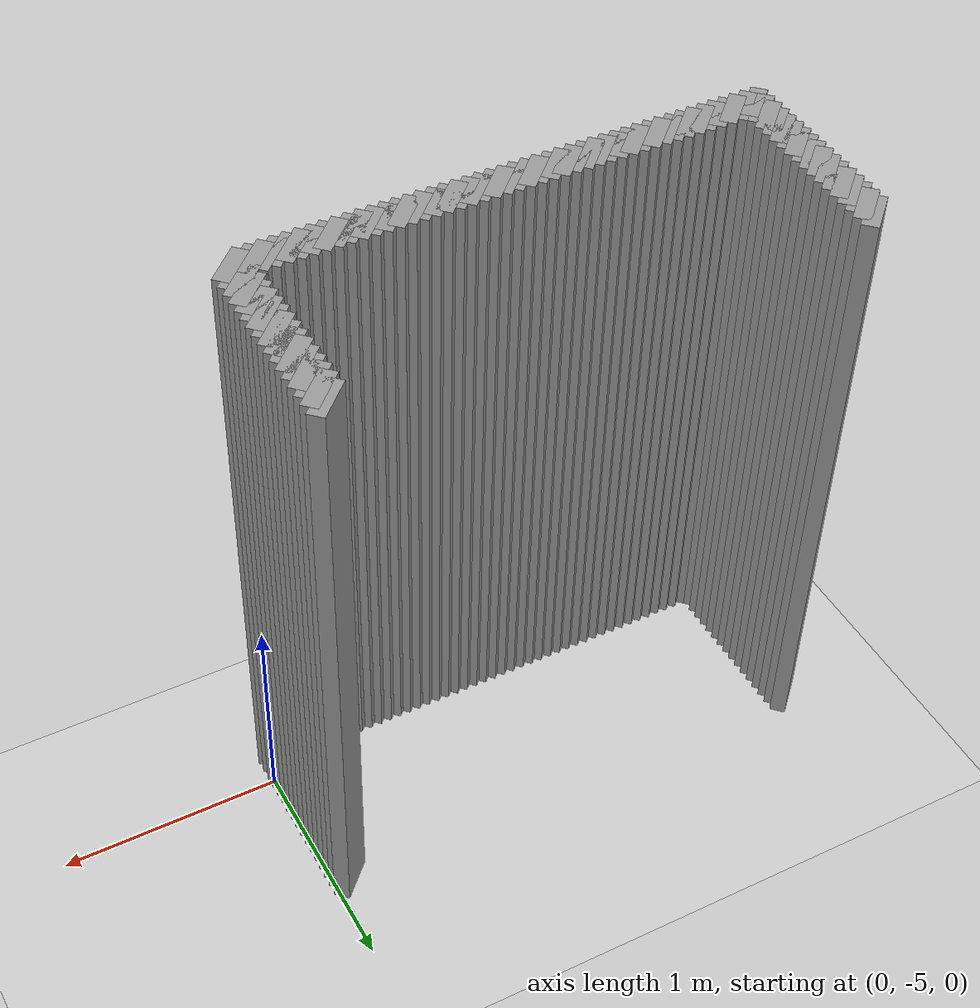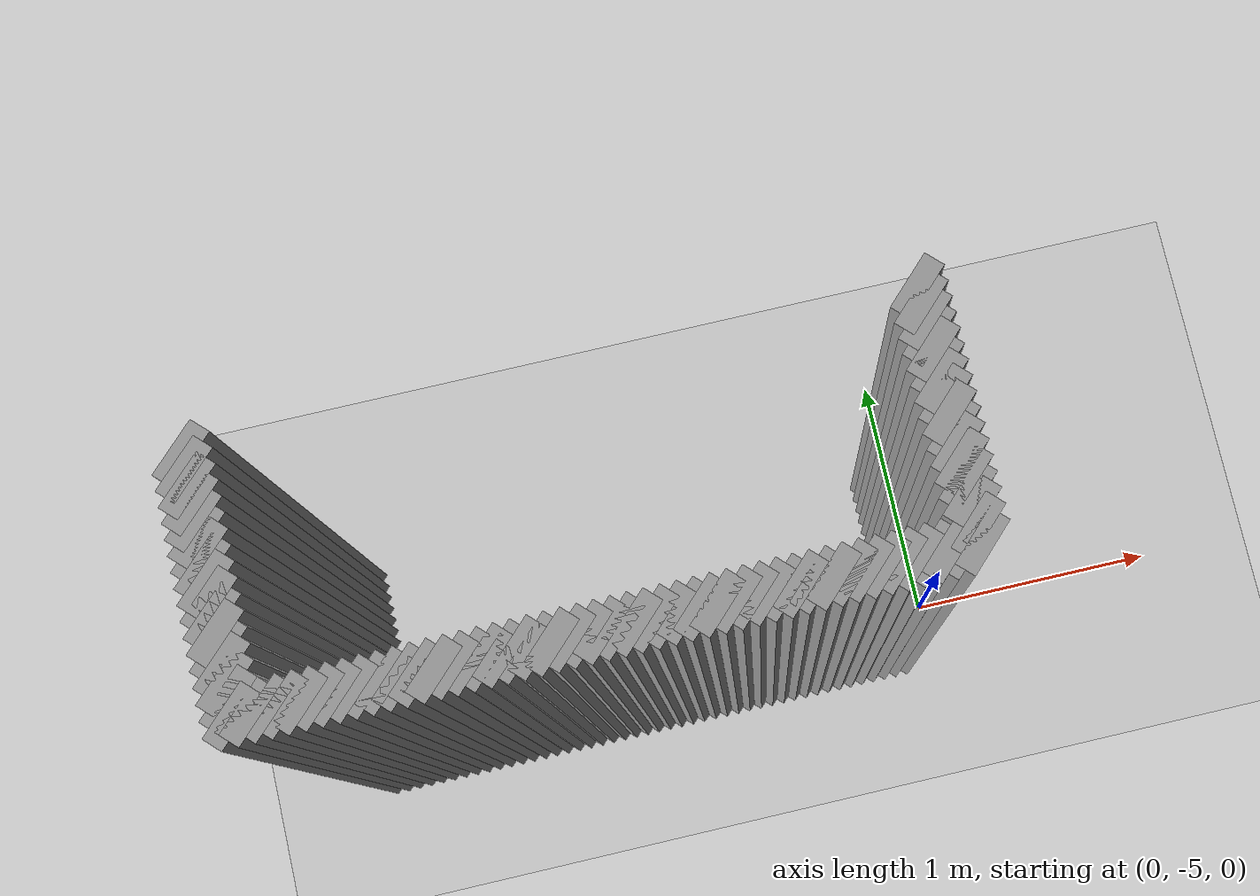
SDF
<sdf version="1.5">
 <world name="default">
  <include><uri>model://ground_plane</uri></include>
  <include><uri>model://sun</uri></include>
  <model name="grey_wall_1335">
   <static>1</static>
   <link name="link">
    <pose>-2.325 -4.375  1.4 0 0 -0.785398163397</pose>
    <collision name="collision"><geometry><box><size>0.0707106781187 .2  2.8</size></box></geometry></collision>
    <visual name="visual">
     <cast_shadows>0</cast_shadows>
     <geometry><box><size>0.0707106781187 .2  2.8</size></box></geometry>
     <material>
      <script>
       <uri>model://grey_wall/materials/scripts</uri>
       <uri>model://grey_wall/materials/textures</uri>
       <name>vrc/grey_wall</name>
      </script>
     </material>
    </visual>
   </link>
  </model>
  <model name="grey_wall_1336">
   <static>1</static>
   <link name="link">
    <pose>-0.075 -4.375  1.4 0 0 -0.785398163397</pose>
    <collision name="collision"><geometry><box><size>0.0707106781187 .2  2.8</size></box></geometry></collision>
    <visual name="visual">
     <cast_shadows>0</cast_shadows>
     <geometry><box><size>0.0707106781187 .2  2.8</size></box></geometry>
     <material>
      <script>
       <uri>model://grey_wall/materials/scripts</uri>
       <uri>model://grey_wall/materials/textures</uri>
       <name>vrc/grey_wall</name>
      </script>
     </material>
    </visual>
   </link>
  </model>
  <model name="grey_wall_1337">
   <static>1</static>
   <link name="link">
    <pose>-2.325 -4.425  1.4 0 0 -0.785398163397</pose>
    <collision name="collision"><geometry><box><size>0.0707106781187 .2  2.8</size></box></geometry></collision>
    <visual name="visual">
     <cast_shadows>0</cast_shadows>
     <geometry><box><size>0.0707106781187 .2  2.8</size></box></geometry>
     <material>
      <script>
       <uri>model://grey_wall/materials/scripts</uri>
       <uri>model://grey_wall/materials/textures</uri>
       <name>vrc/grey_wall</name>
      </script>
     </material>
    </visual>
   </link>
  </model>
  <model name="grey_wall_1338">
   <static>1</static>
   <link name="link">
    <pose>-0.075 -4.425  1.4 0 0 -0.785398163397</pose>
    <collision name="collision"><geometry><box><size>0.0707106781187 .2  2.8</size></box></geometry></collision>
    <visual name="visual">
     <cast_shadows>0</cast_shadows>
     <geometry><box><size>0.0707106781187 .2  2.8</size></box></geometry>
     <material>
      <script>
       <uri>model://grey_wall/materials/scripts</uri>
       <uri>model://grey_wall/materials/textures</uri>
       <name>vrc/grey_wall</name>
      </script>
     </material>
    </visual>
   </link>
  </model>
  <model name="grey_wall_1339">
   <static>1</static>
   <link name="link">
    <pose>-2.325 -4.475  1.4 0 0 -0.785398163397</pose>
    <collision name="collision"><geometry><box><size>0.0707106781187 .2  2.8</size></box></geometry></collision>
    <visual name="visual">
     <cast_shadows>0</cast_shadows>
     <geometry><box><size>0.0707106781187 .2  2.8</size></box></geometry>
     <material>
      <script>
       <uri>model://grey_wall/materials/scripts</uri>
       <uri>model://grey_wall/materials/textures</uri>
       <name>vrc/grey_wall</name>
      </script>
     </material>
    </visual>
   </link>
  </model>
  <model name="grey_wall_1340">
   <static>1</static>
   <link name="link">
    <pose>-0.075 -4.475  1.4 0 0 -0.785398163397</pose>
    <collision name="collision"><geometry><box><size>0.0707106781187 .2  2.8</size></box></geometry></collision>
    <visual name="visual">
     <cast_shadows>0</cast_shadows>
     <geometry><box><size>0.0707106781187 .2  2.8</size></box></geometry>
     <material>
      <script>
       <uri>model://grey_wall/materials/scripts</uri>
       <uri>model://grey_wall/materials/textures</uri>
       <name>vrc/grey_wall</name>
      </script>
     </material>
    </visual>
   </link>
  </model>
  <model name="grey_wall_1341">
   <static>1</static>
   <link name="link">
    <pose>-2.325 -4.525  1.4 0 0 -0.785398163397</pose>
    <collision name="collision"><geometry><box><size>0.0707106781187 .2  2.8</size></box></geometry></collision>
    <visual name="visual">
     <cast_shadows>0</cast_shadows>
     <geometry><box><size>0.0707106781187 .2  2.8</size></box></geometry>
     <material>
      <script>
       <uri>model://grey_wall/materials/scripts</uri>
       <uri>model://grey_wall/materials/textures</uri>
       <name>vrc/grey_wall</name>
      </script>
     </material>
    </visual>
   </link>
  </model>
  <model name="grey_wall_1342">
   <static>1</static>
   <link name="link">
    <pose>-0.075 -4.525  1.4 0 0 -0.785398163397</pose>
    <collision name="collision"><geometry><box><size>0.0707106781187 .2  2.8</size></box></geometry></collision>
    <visual name="visual">
     <cast_shadows>0</cast_shadows>
     <geometry><box><size>0.0707106781187 .2  2.8</size></box></geometry>
     <material>
      <script>
       <uri>model://grey_wall/materials/scripts</uri>
       <uri>model://grey_wall/materials/textures</uri>
       <name>vrc/grey_wall</name>
      </script>
     </material>
    </visual>
   </link>
  </model>
  <model name="grey_wall_1343">
   <static>1</static>
   <link name="link">
    <pose>-2.325 -4.575  1.4 0 0 -0.785398163397</pose>
    <collision name="collision"><geometry><box><size>0.0707106781187 .2  2.8</size></box></geometry></collision>
    <visual name="visual">
     <cast_shadows>0</cast_shadows>
     <geometry><box><size>0.0707106781187 .2  2.8</size></box></geometry>
     <material>
      <script>
       <uri>model://grey_wall/materials/scripts</uri>
       <uri>model://grey_wall/materials/textures</uri>
       <name>vrc/grey_wall</name>
      </script>
     </material>
    </visual>
   </link>
  </model>
  <model name="grey_wall_1344">
   <static>1</static>
   <link name="link">
    <pose>-0.075 -4.575  1.4 0 0 -0.785398163397</pose>
    <collision name="collision"><geometry><box><size>0.0707106781187 .2  2.8</size></box></geometry></collision>
    <visual name="visual">
     <cast_shadows>0</cast_shadows>
     <geometry><box><size>0.0707106781187 .2  2.8</size></box></geometry>
     <material>
      <script>
       <uri>model://grey_wall/materials/scripts</uri>
       <uri>model://grey_wall/materials/textures</uri>
       <name>vrc/grey_wall</name>
      </script>
     </material>
    </visual>
   </link>
  </model>
  <model name="grey_wall_1345">
   <static>1</static>
   <link name="link">
    <pose>-2.325 -4.625  1.4 0 0 -0.785398163397</pose>
    <collision name="collision"><geometry><box><size>0.0707106781187 .2  2.8</size></box></geometry></collision>
    <visual name="visual">
     <cast_shadows>0</cast_shadows>
     <geometry><box><size>0.0707106781187 .2  2.8</size></box></geometry>
     <material>
      <script>
       <uri>model://grey_wall/materials/scripts</uri>
       <uri>model://grey_wall/materials/textures</uri>
       <name>vrc/grey_wall</name>
      </script>
     </material>
    </visual>
   </link>
  </model>
  <model name="grey_wall_1346">
   <static>1</static>
   <link name="link">
    <pose>-0.075 -4.625  1.4 0 0 -0.785398163397</pose>
    <collision name="collision"><geometry><box><size>0.0707106781187 .2  2.8</size></box></geometry></collision>
    <visual name="visual">
     <cast_shadows>0</cast_shadows>
     <geometry><box><size>0.0707106781187 .2  2.8</size></box></geometry>
     <material>
      <script>
       <uri>model://grey_wall/materials/scripts</uri>
       <uri>model://grey_wall/materials/textures</uri>
       <name>vrc/grey_wall</name>
      </script>
     </material>
    </visual>
   </link>
  </model>
  <model name="grey_wall_1347">
   <static>1</static>
   <link name="link">
    <pose>-2.325 -4.675  1.4 0 0 -0.785398163397</pose>
    <collision name="collision"><geometry><box><size>0.0707106781187 .2  2.8</size></box></geometry></collision>
    <visual name="visual">
     <cast_shadows>0</cast_shadows>
     <geometry><box><size>0.0707106781187 .2  2.8</size></box></geometry>
     <material>
      <script>
       <uri>model://grey_wall/materials/scripts</uri>
       <uri>model://grey_wall/materials/textures</uri>
       <name>vrc/grey_wall</name>
      </script>
     </material>
    </visual>
   </link>
  </model>
  <model name="grey_wall_1348">
   <static>1</static>
   <link name="link">
    <pose>-0.075 -4.675  1.4 0 0 -0.785398163397</pose>
    <collision name="collision"><geometry><box><size>0.0707106781187 .2  2.8</size></box></geometry></collision>
    <visual name="visual">
     <cast_shadows>0</cast_shadows>
     <geometry><box><size>0.0707106781187 .2  2.8</size></box></geometry>
     <material>
      <script>
       <uri>model://grey_wall/materials/scripts</uri>
       <uri>model://grey_wall/materials/textures</uri>
       <name>vrc/grey_wall</name>
      </script>
     </material>
    </visual>
   </link>
  </model>
  <model name="grey_wall_1349">
   <static>1</static>
   <link name="link">
    <pose>-2.325 -4.725  1.4 0 0 -0.785398163397</pose>
    <collision name="collision"><geometry><box><size>0.0707106781187 .2  2.8</size></box></geometry></collision>
    <visual name="visual">
     <cast_shadows>0</cast_shadows>
     <geometry><box><size>0.0707106781187 .2  2.8</size></box></geometry>
     <material>
      <script>
       <uri>model://grey_wall/materials/scripts</uri>
       <uri>model://grey_wall/materials/textures</uri>
       <name>vrc/grey_wall</name>
      </script>
     </material>
    </visual>
   </link>
  </model>
  <model name="grey_wall_1350">
   <static>1</static>
   <link name="link">
    <pose>-0.075 -4.725  1.4 0 0 -0.785398163397</pose>
    <collision name="collision"><geometry><box><size>0.0707106781187 .2  2.8</size></box></geometry></collision>
    <visual name="visual">
     <cast_shadows>0</cast_shadows>
     <geometry><box><size>0.0707106781187 .2  2.8</size></box></geometry>
     <material>
      <script>
       <uri>model://grey_wall/materials/scripts</uri>
       <uri>model://grey_wall/materials/textures</uri>
       <name>vrc/grey_wall</name>
      </script>
     </material>
    </visual>
   </link>
  </model>
  <model name="grey_wall_1351">
   <static>1</static>
   <link name="link">
    <pose>-2.325 -4.775  1.4 0 0 -0.785398163397</pose>
    <collision name="collision"><geometry><box><size>0.0707106781187 .2  2.8</size></box></geometry></collision>
    <visual name="visual">
     <cast_shadows>0</cast_shadows>
     <geometry><box><size>0.0707106781187 .2  2.8</size></box></geometry>
     <material>
      <script>
       <uri>model://grey_wall/materials/scripts</uri>
       <uri>model://grey_wall/materials/textures</uri>
       <name>vrc/grey_wall</name>
      </script>
     </material>
    </visual>
   </link>
  </model>
  <model name="grey_wall_1352">
   <static>1</static>
   <link name="link">
    <pose>-0.075 -4.775  1.4 0 0 -0.785398163397</pose>
    <collision name="collision"><geometry><box><size>0.0707106781187 .2  2.8</size></box></geometry></collision>
    <visual name="visual">
     <cast_shadows>0</cast_shadows>
     <geometry><box><size>0.0707106781187 .2  2.8</size></box></geometry>
     <material>
      <script>
       <uri>model://grey_wall/materials/scripts</uri>
       <uri>model://grey_wall/materials/textures</uri>
       <name>vrc/grey_wall</name>
      </script>
     </material>
    </visual>
   </link>
  </model>
  <model name="grey_wall_1353">
   <static>1</static>
   <link name="link">
    <pose>-2.325 -4.825  1.4 0 0 -0.785398163397</pose>
    <collision name="collision"><geometry><box><size>0.0707106781187 .2  2.8</size></box></geometry></collision>
    <visual name="visual">
     <cast_shadows>0</cast_shadows>
     <geometry><box><size>0.0707106781187 .2  2.8</size></box></geometry>
     <material>
      <script>
       <uri>model://grey_wall/materials/scripts</uri>
       <uri>model://grey_wall/materials/textures</uri>
       <name>vrc/grey_wall</name>
      </script>
     </material>
    </visual>
   </link>
  </model>
  <model name="grey_wall_1354">
   <static>1</static>
   <link name="link">
    <pose>-0.075 -4.825  1.4 0 0 -0.785398163397</pose>
    <collision name="collision"><geometry><box><size>0.0707106781187 .2  2.8</size></box></geometry></collision>
    <visual name="visual">
     <cast_shadows>0</cast_shadows>
     <geometry><box><size>0.0707106781187 .2  2.8</size></box></geometry>
     <material>
      <script>
       <uri>model://grey_wall/materials/scripts</uri>
       <uri>model://grey_wall/materials/textures</uri>
       <name>vrc/grey_wall</name>
      </script>
     </material>
    </visual>
   </link>
  </model>
  <model name="grey_wall_1355">
   <static>1</static>
   <link name="link">
    <pose>-2.325 -4.875  1.4 0 0 -0.785398163397</pose>
    <collision name="collision"><geometry><box><size>0.0707106781187 .2  2.8</size></box></geometry></collision>
    <visual name="visual">
     <cast_shadows>0</cast_shadows>
     <geometry><box><size>0.0707106781187 .2  2.8</size></box></geometry>
     <material>
      <script>
       <uri>model://grey_wall/materials/scripts</uri>
       <uri>model://grey_wall/materials/textures</uri>
       <name>vrc/grey_wall</name>
      </script>
     </material>
    </visual>
   </link>
  </model>
  <model name="grey_wall_1356">
   <static>1</static>
   <link name="link">
    <pose>-0.075 -4.875  1.4 0 0 -0.785398163397</pose>
    <collision name="collision"><geometry><box><size>0.0707106781187 .2  2.8</size></box></geometry></collision>
    <visual name="visual">
     <cast_shadows>0</cast_shadows>
     <geometry><box><size>0.0707106781187 .2  2.8</size></box></geometry>
     <material>
      <script>
       <uri>model://grey_wall/materials/scripts</uri>
       <uri>model://grey_wall/materials/textures</uri>
       <name>vrc/grey_wall</name>
      </script>
     </material>
    </visual>
   </link>
  </model>
  <model name="grey_wall_1357">
   <static>1</static>
   <link name="link">
    <pose>-2.325 -4.925  1.4 0 0 -0.785398163397</pose>
    <collision name="collision"><geometry><box><size>0.0707106781187 .2  2.8</size></box></geometry></collision>
    <visual name="visual">
     <cast_shadows>0</cast_shadows>
     <geometry><box><size>0.0707106781187 .2  2.8</size></box></geometry>
     <material>
      <script>
       <uri>model://grey_wall/materials/scripts</uri>
       <uri>model://grey_wall/materials/textures</uri>
       <name>vrc/grey_wall</name>
      </script>
     </material>
    </visual>
   </link>
  </model>
  <model name="grey_wall_1358">
   <static>1</static>
   <link name="link">
    <pose>-0.075 -4.925  1.4 0 0 -0.785398163397</pose>
    <collision name="collision"><geometry><box><size>0.0707106781187 .2  2.8</size></box></geometry></collision>
    <visual name="visual">
     <cast_shadows>0</cast_shadows>
     <geometry><box><size>0.0707106781187 .2  2.8</size></box></geometry>
     <material>
      <script>
       <uri>model://grey_wall/materials/scripts</uri>
       <uri>model://grey_wall/materials/textures</uri>
       <name>vrc/grey_wall</name>
      </script>
     </material>
    </visual>
   </link>
  </model>
  <model name="grey_wall_1359">
   <static>1</static>
   <link name="link">
    <pose>-2.325 -4.975  1.4 0 0 -0.785398163397</pose>
    <collision name="collision"><geometry><box><size>0.0707106781187 .2  2.8</size></box></geometry></collision>
    <visual name="visual">
     <cast_shadows>0</cast_shadows>
     <geometry><box><size>0.0707106781187 .2  2.8</size></box></geometry>
     <material>
      <script>
       <uri>model://grey_wall/materials/scripts</uri>
       <uri>model://grey_wall/materials/textures</uri>
       <name>vrc/grey_wall</name>
      </script>
     </material>
    </visual>
   </link>
  </model>
  <model name="grey_wall_1360">
   <static>1</static>
   <link name="link">
    <pose>-0.075 -4.975  1.4 0 0 -0.785398163397</pose>
    <collision name="collision"><geometry><box><size>0.0707106781187 .2  2.8</size></box></geometry></collision>
    <visual name="visual">
     <cast_shadows>0</cast_shadows>
     <geometry><box><size>0.0707106781187 .2  2.8</size></box></geometry>
     <material>
      <script>
       <uri>model://grey_wall/materials/scripts</uri>
       <uri>model://grey_wall/materials/textures</uri>
       <name>vrc/grey_wall</name>
      </script>
     </material>
    </visual>
   </link>
  </model>
  <model name="grey_wall_1361">
   <static>1</static>
   <link name="link">
    <pose>-2.325 -5.025  1.4 0 0 -0.785398163397</pose>
    <collision name="collision"><geometry><box><size>0.0707106781187 .2  2.8</size></box></geometry></collision>
    <visual name="visual">
     <cast_shadows>0</cast_shadows>
     <geometry><box><size>0.0707106781187 .2  2.8</size></box></geometry>
     <material>
      <script>
       <uri>model://grey_wall/materials/scripts</uri>
       <uri>model://grey_wall/materials/textures</uri>
       <name>vrc/grey_wall</name>
      </script>
     </material>
    </visual>
   </link>
  </model>
  <model name="grey_wall_1362">
   <static>1</static>
   <link name="link">
    <pose>-0.075 -5.025  1.4 0 0 -0.785398163397</pose>
    <collision name="collision"><geometry><box><size>0.0707106781187 .2  2.8</size></box></geometry></collision>
    <visual name="visual">
     <cast_shadows>0</cast_shadows>
     <geometry><box><size>0.0707106781187 .2  2.8</size></box></geometry>
     <material>
      <script>
       <uri>model://grey_wall/materials/scripts</uri>
       <uri>model://grey_wall/materials/textures</uri>
       <name>vrc/grey_wall</name>
      </script>
     </material>
    </visual>
   </link>
  </model>
  <model name="grey_wall_1363">
   <static>1</static>
   <link name="link">
    <pose>-2.325 -5.075  1.4 0 0 -0.785398163397</pose>
    <collision name="collision"><geometry><box><size>0.0707106781187 .2  2.8</size></box></geometry></collision>
    <visual name="visual">
     <cast_shadows>0</cast_shadows>
     <geometry><box><size>0.0707106781187 .2  2.8</size></box></geometry>
     <material>
      <script>
       <uri>model://grey_wall/materials/scripts</uri>
       <uri>model://grey_wall/materials/textures</uri>
       <name>vrc/grey_wall</name>
      </script>
     </material>
    </visual>
   </link>
  </model>
  <model name="grey_wall_1364">
   <static>1</static>
   <link name="link">
    <pose>-0.075 -5.075  1.4 0 0 -0.785398163397</pose>
    <collision name="collision"><geometry><box><size>0.0707106781187 .2  2.8</size></box></geometry></collision>
    <visual name="visual">
     <cast_shadows>0</cast_shadows>
     <geometry><box><size>0.0707106781187 .2  2.8</size></box></geometry>
     <material>
      <script>
       <uri>model://grey_wall/materials/scripts</uri>
       <uri>model://grey_wall/materials/textures</uri>
       <name>vrc/grey_wall</name>
      </script>
     </material>
    </visual>
   </link>
  </model>
  <model name="grey_wall_1365">
   <static>1</static>
   <link name="link">
    <pose>-2.325 -5.125  1.4 0 0 -0.785398163397</pose>
    <collision name="collision"><geometry><box><size>0.0707106781187 .2  2.8</size></box></geometry></collision>
    <visual name="visual">
     <cast_shadows>0</cast_shadows>
     <geometry><box><size>0.0707106781187 .2  2.8</size></box></geometry>
     <material>
      <script>
       <uri>model://grey_wall/materials/scripts</uri>
       <uri>model://grey_wall/materials/textures</uri>
       <name>vrc/grey_wall</name>
      </script>
     </material>
    </visual>
   </link>
  </model>
  <model name="grey_wall_1366">
   <static>1</static>
   <link name="link">
    <pose>-0.075 -5.125  1.4 0 0 -0.785398163397</pose>
    <collision name="collision"><geometry><box><size>0.0707106781187 .2  2.8</size></box></geometry></collision>
    <visual name="visual">
     <cast_shadows>0</cast_shadows>
     <geometry><box><size>0.0707106781187 .2  2.8</size></box></geometry>
     <material>
      <script>
       <uri>model://grey_wall/materials/scripts</uri>
       <uri>model://grey_wall/materials/textures</uri>
       <name>vrc/grey_wall</name>
      </script>
     </material>
    </visual>
   </link>
  </model>
  <model name="grey_wall_1367">
   <static>1</static>
   <link name="link">
    <pose>-2.325 -5.175  1.4 0 0 -0.785398163397</pose>
    <collision name="collision"><geometry><box><size>0.0707106781187 .2  2.8</size></box></geometry></collision>
    <visual name="visual">
     <cast_shadows>0</cast_shadows>
     <geometry><box><size>0.0707106781187 .2  2.8</size></box></geometry>
     <material>
      <script>
       <uri>model://grey_wall/materials/scripts</uri>
       <uri>model://grey_wall/materials/textures</uri>
       <name>vrc/grey_wall</name>
      </script>
     </material>
    </visual>
   </link>
  </model>
  <model name="grey_wall_1368">
   <static>1</static>
   <link name="link">
    <pose>-2.275 -5.175  1.4 0 0 -0.785398163397</pose>
    <collision name="collision"><geometry><box><size>0.0707106781187 .2  2.8</size></box></geometry></collision>
    <visual name="visual">
     <cast_shadows>0</cast_shadows>
     <geometry><box><size>0.0707106781187 .2  2.8</size></box></geometry>
     <material>
      <script>
       <uri>model://grey_wall/materials/scripts</uri>
       <uri>model://grey_wall/materials/textures</uri>
       <name>vrc/grey_wall</name>
      </script>
     </material>
    </visual>
   </link>
  </model>
  <model name="grey_wall_1369">
   <static>1</static>
   <link name="link">
    <pose>-2.225 -5.175  1.4 0 0 -0.785398163397</pose>
    <collision name="collision"><geometry><box><size>0.0707106781187 .2  2.8</size></box></geometry></collision>
    <visual name="visual">
     <cast_shadows>0</cast_shadows>
     <geometry><box><size>0.0707106781187 .2  2.8</size></box></geometry>
     <material>
      <script>
       <uri>model://grey_wall/materials/scripts</uri>
       <uri>model://grey_wall/materials/textures</uri>
       <name>vrc/grey_wall</name>
      </script>
     </material>
    </visual>
   </link>
  </model>
  <model name="grey_wall_1370">
   <static>1</static>
   <link name="link">
    <pose>-2.175 -5.175  1.4 0 0 -0.785398163397</pose>
    <collision name="collision"><geometry><box><size>0.0707106781187 .2  2.8</size></box></geometry></collision>
    <visual name="visual">
     <cast_shadows>0</cast_shadows>
     <geometry><box><size>0.0707106781187 .2  2.8</size></box></geometry>
     <material>
      <script>
       <uri>model://grey_wall/materials/scripts</uri>
       <uri>model://grey_wall/materials/textures</uri>
       <name>vrc/grey_wall</name>
      </script>
     </material>
    </visual>
   </link>
  </model>
  <model name="grey_wall_1371">
   <static>1</static>
   <link name="link">
    <pose>-2.125 -5.175  1.4 0 0 -0.785398163397</pose>
    <collision name="collision"><geometry><box><size>0.0707106781187 .2  2.8</size></box></geometry></collision>
    <visual name="visual">
     <cast_shadows>0</cast_shadows>
     <geometry><box><size>0.0707106781187 .2  2.8</size></box></geometry>
     <material>
      <script>
       <uri>model://grey_wall/materials/scripts</uri>
       <uri>model://grey_wall/materials/textures</uri>
       <name>vrc/grey_wall</name>
      </script>
     </material>
    </visual>
   </link>
  </model>
  <model name="grey_wall_1372">
   <static>1</static>
   <link name="link">
    <pose>-2.075 -5.175  1.4 0 0 -0.785398163397</pose>
    <collision name="collision"><geometry><box><size>0.0707106781187 .2  2.8</size></box></geometry></collision>
    <visual name="visual">
     <cast_shadows>0</cast_shadows>
     <geometry><box><size>0.0707106781187 .2  2.8</size></box></geometry>
     <material>
      <script>
       <uri>model://grey_wall/materials/scripts</uri>
       <uri>model://grey_wall/materials/textures</uri>
       <name>vrc/grey_wall</name>
      </script>
     </material>
    </visual>
   </link>
  </model>
  <model name="grey_wall_1373">
   <static>1</static>
   <link name="link">
    <pose>-2.025 -5.175  1.4 0 0 -0.785398163397</pose>
    <collision name="collision"><geometry><box><size>0.0707106781187 .2  2.8</size></box></geometry></collision>
    <visual name="visual">
     <cast_shadows>0</cast_shadows>
     <geometry><box><size>0.0707106781187 .2  2.8</size></box></geometry>
     <material>
      <script>
       <uri>model://grey_wall/materials/scripts</uri>
       <uri>model://grey_wall/materials/textures</uri>
       <name>vrc/grey_wall</name>
      </script>
     </material>
    </visual>
   </link>
  </model>
  <model name="grey_wall_1374">
   <static>1</static>
   <link name="link">
    <pose>-1.975 -5.175  1.4 0 0 -0.785398163397</pose>
    <collision name="collision"><geometry><box><size>0.0707106781187 .2  2.8</size></box></geometry></collision>
    <visual name="visual">
     <cast_shadows>0</cast_shadows>
     <geometry><box><size>0.0707106781187 .2  2.8</size></box></geometry>
     <material>
      <script>
       <uri>model://grey_wall/materials/scripts</uri>
       <uri>model://grey_wall/materials/textures</uri>
       <name>vrc/grey_wall</name>
      </script>
     </material>
    </visual>
   </link>
  </model>
  <model name="grey_wall_1375">
   <static>1</static>
   <link name="link">
    <pose>-1.925 -5.175  1.4 0 0 -0.785398163397</pose>
    <collision name="collision"><geometry><box><size>0.0707106781187 .2  2.8</size></box></geometry></collision>
    <visual name="visual">
     <cast_shadows>0</cast_shadows>
     <geometry><box><size>0.0707106781187 .2  2.8</size></box></geometry>
     <material>
      <script>
       <uri>model://grey_wall/materials/scripts</uri>
       <uri>model://grey_wall/materials/textures</uri>
       <name>vrc/grey_wall</name>
      </script>
     </material>
    </visual>
   </link>
  </model>
  <model name="grey_wall_1376">
   <static>1</static>
   <link name="link">
    <pose>-1.875 -5.175  1.4 0 0 -0.785398163397</pose>
    <collision name="collision"><geometry><box><size>0.0707106781187 .2  2.8</size></box></geometry></collision>
    <visual name="visual">
     <cast_shadows>0</cast_shadows>
     <geometry><box><size>0.0707106781187 .2  2.8</size></box></geometry>
     <material>
      <script>
       <uri>model://grey_wall/materials/scripts</uri>
       <uri>model://grey_wall/materials/textures</uri>
       <name>vrc/grey_wall</name>
      </script>
     </material>
    </visual>
   </link>
  </model>
  <model name="grey_wall_1377">
   <static>1</static>
   <link name="link">
    <pose>-1.825 -5.175  1.4 0 0 -0.785398163397</pose>
    <collision name="collision"><geometry><box><size>0.0707106781187 .2  2.8</size></box></geometry></collision>
    <visual name="visual">
     <cast_shadows>0</cast_shadows>
     <geometry><box><size>0.0707106781187 .2  2.8</size></box></geometry>
     <material>
      <script>
       <uri>model://grey_wall/materials/scripts</uri>
       <uri>model://grey_wall/materials/textures</uri>
       <name>vrc/grey_wall</name>
      </script>
     </material>
    </visual>
   </link>
  </model>
  <model name="grey_wall_1378">
   <static>1</static>
   <link name="link">
    <pose>-1.775 -5.175  1.4 0 0 -0.785398163397</pose>
    <collision name="collision"><geometry><box><size>0.0707106781187 .2  2.8</size></box></geometry></collision>
    <visual name="visual">
     <cast_shadows>0</cast_shadows>
     <geometry><box><size>0.0707106781187 .2  2.8</size></box></geometry>
     <material>
      <script>
       <uri>model://grey_wall/materials/scripts</uri>
       <uri>model://grey_wall/materials/textures</uri>
       <name>vrc/grey_wall</name>
      </script>
     </material>
    </visual>
   </link>
  </model>
  <model name="grey_wall_1379">
   <static>1</static>
   <link name="link">
    <pose>-1.725 -5.175  1.4 0 0 -0.785398163397</pose>
    <collision name="collision"><geometry><box><size>0.0707106781187 .2  2.8</size></box></geometry></collision>
    <visual name="visual">
     <cast_shadows>0</cast_shadows>
     <geometry><box><size>0.0707106781187 .2  2.8</size></box></geometry>
     <material>
      <script>
       <uri>model://grey_wall/materials/scripts</uri>
       <uri>model://grey_wall/materials/textures</uri>
       <name>vrc/grey_wall</name>
      </script>
     </material>
    </visual>
   </link>
  </model>
  <model name="grey_wall_1380">
   <static>1</static>
   <link name="link">
    <pose>-1.675 -5.175  1.4 0 0 -0.785398163397</pose>
    <collision name="collision"><geometry><box><size>0.0707106781187 .2  2.8</size></box></geometry></collision>
    <visual name="visual">
     <cast_shadows>0</cast_shadows>
     <geometry><box><size>0.0707106781187 .2  2.8</size></box></geometry>
     <material>
      <script>
       <uri>model://grey_wall/materials/scripts</uri>
       <uri>model://grey_wall/materials/textures</uri>
       <name>vrc/grey_wall</name>
      </script>
     </material>
    </visual>
   </link>
  </model>
  <model name="grey_wall_1381">
   <static>1</static>
   <link name="link">
    <pose>-1.625 -5.175  1.4 0 0 -0.785398163397</pose>
    <collision name="collision"><geometry><box><size>0.0707106781187 .2  2.8</size></box></geometry></collision>
    <visual name="visual">
     <cast_shadows>0</cast_shadows>
     <geometry><box><size>0.0707106781187 .2  2.8</size></box></geometry>
     <material>
      <script>
       <uri>model://grey_wall/materials/scripts</uri>
       <uri>model://grey_wall/materials/textures</uri>
       <name>vrc/grey_wall</name>
      </script>
     </material>
    </visual>
   </link>
  </model>
  <model name="grey_wall_1382">
   <static>1</static>
   <link name="link">
    <pose>-1.575 -5.175  1.4 0 0 -0.785398163397</pose>
    <collision name="collision"><geometry><box><size>0.0707106781187 .2  2.8</size></box></geometry></collision>
    <visual name="visual">
     <cast_shadows>0</cast_shadows>
     <geometry><box><size>0.0707106781187 .2  2.8</size></box></geometry>
     <material>
      <script>
       <uri>model://grey_wall/materials/scripts</uri>
       <uri>model://grey_wall/materials/textures</uri>
       <name>vrc/grey_wall</name>
      </script>
     </material>
    </visual>
   </link>
  </model>
  <model name="grey_wall_1383">
   <static>1</static>
   <link name="link">
    <pose>-1.525 -5.175  1.4 0 0 -0.785398163397</pose>
    <collision name="collision"><geometry><box><size>0.0707106781187 .2  2.8</size></box></geometry></collision>
    <visual name="visual">
     <cast_shadows>0</cast_shadows>
     <geometry><box><size>0.0707106781187 .2  2.8</size></box></geometry>
     <material>
      <script>
       <uri>model://grey_wall/materials/scripts</uri>
       <uri>model://grey_wall/materials/textures</uri>
       <name>vrc/grey_wall</name>
      </script>
     </material>
    </visual>
   </link>
  </model>
  <model name="grey_wall_1384">
   <static>1</static>
   <link name="link">
    <pose>-1.475 -5.175  1.4 0 0 -0.785398163397</pose>
    <collision name="collision"><geometry><box><size>0.0707106781187 .2  2.8</size></box></geometry></collision>
    <visual name="visual">
     <cast_shadows>0</cast_shadows>
     <geometry><box><size>0.0707106781187 .2  2.8</size></box></geometry>
     <material>
      <script>
       <uri>model://grey_wall/materials/scripts</uri>
       <uri>model://grey_wall/materials/textures</uri>
       <name>vrc/grey_wall</name>
      </script>
     </material>
    </visual>
   </link>
  </model>
  <model name="grey_wall_1385">
   <static>1</static>
   <link name="link">
    <pose>-1.425 -5.175  1.4 0 0 -0.785398163397</pose>
    <collision name="collision"><geometry><box><size>0.0707106781187 .2  2.8</size></box></geometry></collision>
    <visual name="visual">
     <cast_shadows>0</cast_shadows>
     <geometry><box><size>0.0707106781187 .2  2.8</size></box></geometry>
     <material>
      <script>
       <uri>model://grey_wall/materials/scripts</uri>
       <uri>model://grey_wall/materials/textures</uri>
       <name>vrc/grey_wall</name>
      </script>
     </material>
    </visual>
   </link>
  </model>
  <model name="grey_wall_1386">
   <static>1</static>
   <link name="link">
    <pose>-1.375 -5.175  1.4 0 0 -0.785398163397</pose>
    <collision name="collision"><geometry><box><size>0.0707106781187 .2  2.8</size></box></geometry></collision>
    <visual name="visual">
     <cast_shadows>0</cast_shadows>
     <geometry><box><size>0.0707106781187 .2  2.8</size></box></geometry>
     <material>
      <script>
       <uri>model://grey_wall/materials/scripts</uri>
       <uri>model://grey_wall/materials/textures</uri>
       <name>vrc/grey_wall</name>
      </script>
     </material>
    </visual>
   </link>
  </model>
  <model name="grey_wall_1387">
   <static>1</static>
   <link name="link">
    <pose>-1.325 -5.175  1.4 0 0 -0.785398163397</pose>
    <collision name="collision"><geometry><box><size>0.0707106781187 .2  2.8</size></box></geometry></collision>
    <visual name="visual">
     <cast_shadows>0</cast_shadows>
     <geometry><box><size>0.0707106781187 .2  2.8</size></box></geometry>
     <material>
      <script>
       <uri>model://grey_wall/materials/scripts</uri>
       <uri>model://grey_wall/materials/textures</uri>
       <name>vrc/grey_wall</name>
      </script>
     </material>
    </visual>
   </link>
  </model>
  <model name="grey_wall_1388">
   <static>1</static>
   <link name="link">
    <pose>-1.275 -5.175  1.4 0 0 -0.785398163397</pose>
    <collision name="collision"><geometry><box><size>0.0707106781187 .2  2.8</size></box></geometry></collision>
    <visual name="visual">
     <cast_shadows>0</cast_shadows>
     <geometry><box><size>0.0707106781187 .2  2.8</size></box></geometry>
     <material>
      <script>
       <uri>model://grey_wall/materials/scripts</uri>
       <uri>model://grey_wall/materials/textures</uri>
       <name>vrc/grey_wall</name>
      </script>
     </material>
    </visual>
   </link>
  </model>
  <model name="grey_wall_1389">
   <static>1</static>
   <link name="link">
    <pose>-1.225 -5.175  1.4 0 0 -0.785398163397</pose>
    <collision name="collision"><geometry><box><size>0.0707106781187 .2  2.8</size></box></geometry></collision>
    <visual name="visual">
     <cast_shadows>0</cast_shadows>
     <geometry><box><size>0.0707106781187 .2  2.8</size></box></geometry>
     <material>
      <script>
       <uri>model://grey_wall/materials/scripts</uri>
       <uri>model://grey_wall/materials/textures</uri>
       <name>vrc/grey_wall</name>
      </script>
     </material>
    </visual>
   </link>
  </model>
  <model name="grey_wall_1390">
   <static>1</static>
   <link name="link">
    <pose>-1.175 -5.175  1.4 0 0 -0.785398163397</pose>
    <collision name="collision"><geometry><box><size>0.0707106781187 .2  2.8</size></box></geometry></collision>
    <visual name="visual">
     <cast_shadows>0</cast_shadows>
     <geometry><box><size>0.0707106781187 .2  2.8</size></box></geometry>
     <material>
      <script>
       <uri>model://grey_wall/materials/scripts</uri>
       <uri>model://grey_wall/materials/textures</uri>
       <name>vrc/grey_wall</name>
      </script>
     </material>
    </visual>
   </link>
  </model>
  <model name="grey_wall_1391">
   <static>1</static>
   <link name="link">
    <pose>-1.125 -5.175  1.4 0 0 -0.785398163397</pose>
    <collision name="collision"><geometry><box><size>0.0707106781187 .2  2.8</size></box></geometry></collision>
    <visual name="visual">
     <cast_shadows>0</cast_shadows>
     <geometry><box><size>0.0707106781187 .2  2.8</size></box></geometry>
     <material>
      <script>
       <uri>model://grey_wall/materials/scripts</uri>
       <uri>model://grey_wall/materials/textures</uri>
       <name>vrc/grey_wall</name>
      </script>
     </material>
    </visual>
   </link>
  </model>
  <model name="grey_wall_1392">
   <static>1</static>
   <link name="link">
    <pose>-1.075 -5.175  1.4 0 0 -0.785398163397</pose>
    <collision name="collision"><geometry><box><size>0.0707106781187 .2  2.8</size></box></geometry></collision>
    <visual name="visual">
     <cast_shadows>0</cast_shadows>
     <geometry><box><size>0.0707106781187 .2  2.8</size></box></geometry>
     <material>
      <script>
       <uri>model://grey_wall/materials/scripts</uri>
       <uri>model://grey_wall/materials/textures</uri>
       <name>vrc/grey_wall</name>
      </script>
     </material>
    </visual>
   </link>
  </model>
  <model name="grey_wall_1393">
   <static>1</static>
   <link name="link">
    <pose>-1.025 -5.175  1.4 0 0 -0.785398163397</pose>
    <collision name="collision"><geometry><box><size>0.0707106781187 .2  2.8</size></box></geometry></collision>
    <visual name="visual">
     <cast_shadows>0</cast_shadows>
     <geometry><box><size>0.0707106781187 .2  2.8</size></box></geometry>
     <material>
      <script>
       <uri>model://grey_wall/materials/scripts</uri>
       <uri>model://grey_wall/materials/textures</uri>
       <name>vrc/grey_wall</name>
      </script>
     </material>
    </visual>
   </link>
  </model>
  <model name="grey_wall_1394">
   <static>1</static>
   <link name="link">
    <pose>-0.975 -5.175  1.4 0 0 -0.785398163397</pose>
    <collision name="collision"><geometry><box><size>0.0707106781187 .2  2.8</size></box></geometry></collision>
    <visual name="visual">
     <cast_shadows>0</cast_shadows>
     <geometry><box><size>0.0707106781187 .2  2.8</size></box></geometry>
     <material>
      <script>
       <uri>model://grey_wall/materials/scripts</uri>
       <uri>model://grey_wall/materials/textures</uri>
       <name>vrc/grey_wall</name>
      </script>
     </material>
    </visual>
   </link>
  </model>
  <model name="grey_wall_1395">
   <static>1</static>
   <link name="link">
    <pose>-0.925 -5.175  1.4 0 0 -0.785398163397</pose>
    <collision name="collision"><geometry><box><size>0.0707106781187 .2  2.8</size></box></geometry></collision>
    <visual name="visual">
     <cast_shadows>0</cast_shadows>
     <geometry><box><size>0.0707106781187 .2  2.8</size></box></geometry>
     <material>
      <script>
       <uri>model://grey_wall/materials/scripts</uri>
       <uri>model://grey_wall/materials/textures</uri>
       <name>vrc/grey_wall</name>
      </script>
     </material>
    </visual>
   </link>
  </model>
  <model name="grey_wall_1396">
   <static>1</static>
   <link name="link">
    <pose>-0.875 -5.175  1.4 0 0 -0.785398163397</pose>
    <collision name="collision"><geometry><box><size>0.0707106781187 .2  2.8</size></box></geometry></collision>
    <visual name="visual">
     <cast_shadows>0</cast_shadows>
     <geometry><box><size>0.0707106781187 .2  2.8</size></box></geometry>
     <material>
      <script>
       <uri>model://grey_wall/materials/scripts</uri>
       <uri>model://grey_wall/materials/textures</uri>
       <name>vrc/grey_wall</name>
      </script>
     </material>
    </visual>
   </link>
  </model>
  <model name="grey_wall_1397">
   <static>1</static>
   <link name="link">
    <pose>-0.825 -5.175  1.4 0 0 -0.785398163397</pose>
    <collision name="collision"><geometry><box><size>0.0707106781187 .2  2.8</size></box></geometry></collision>
    <visual name="visual">
     <cast_shadows>0</cast_shadows>
     <geometry><box><size>0.0707106781187 .2  2.8</size></box></geometry>
     <material>
      <script>
       <uri>model://grey_wall/materials/scripts</uri>
       <uri>model://grey_wall/materials/textures</uri>
       <name>vrc/grey_wall</name>
      </script>
     </material>
    </visual>
   </link>
  </model>
  <model name="grey_wall_1398">
   <static>1</static>
   <link name="link">
    <pose>-0.775 -5.175  1.4 0 0 -0.785398163397</pose>
    <collision name="collision"><geometry><box><size>0.0707106781187 .2  2.8</size></box></geometry></collision>
    <visual name="visual">
     <cast_shadows>0</cast_shadows>
     <geometry><box><size>0.0707106781187 .2  2.8</size></box></geometry>
     <material>
      <script>
       <uri>model://grey_wall/materials/scripts</uri>
       <uri>model://grey_wall/materials/textures</uri>
       <name>vrc/grey_wall</name>
      </script>
     </material>
    </visual>
   </link>
  </model>
  <model name="grey_wall_1399">
   <static>1</static>
   <link name="link">
    <pose>-0.725 -5.175  1.4 0 0 -0.785398163397</pose>
    <collision name="collision"><geometry><box><size>0.0707106781187 .2  2.8</size></box></geometry></collision>
    <visual name="visual">
     <cast_shadows>0</cast_shadows>
     <geometry><box><size>0.0707106781187 .2  2.8</size></box></geometry>
     <material>
      <script>
       <uri>model://grey_wall/materials/scripts</uri>
       <uri>model://grey_wall/materials/textures</uri>
       <name>vrc/grey_wall</name>
      </script>
     </material>
    </visual>
   </link>
  </model>
  <model name="grey_wall_1400">
   <static>1</static>
   <link name="link">
    <pose>-0.675 -5.175  1.4 0 0 -0.785398163397</pose>
    <collision name="collision"><geometry><box><size>0.0707106781187 .2  2.8</size></box></geometry></collision>
    <visual name="visual">
     <cast_shadows>0</cast_shadows>
     <geometry><box><size>0.0707106781187 .2  2.8</size></box></geometry>
     <material>
      <script>
       <uri>model://grey_wall/materials/scripts</uri>
       <uri>model://grey_wall/materials/textures</uri>
       <name>vrc/grey_wall</name>
      </script>
     </material>
    </visual>
   </link>
  </model>
  <model name="grey_wall_1401">
   <static>1</static>
   <link name="link">
    <pose>-0.625 -5.175  1.4 0 0 -0.785398163397</pose>
    <collision name="collision"><geometry><box><size>0.0707106781187 .2  2.8</size></box></geometry></collision>
    <visual name="visual">
     <cast_shadows>0</cast_shadows>
     <geometry><box><size>0.0707106781187 .2  2.8</size></box></geometry>
     <material>
      <script>
       <uri>model://grey_wall/materials/scripts</uri>
       <uri>model://grey_wall/materials/textures</uri>
       <name>vrc/grey_wall</name>
      </script>
     </material>
    </visual>
   </link>
  </model>
  <model name="grey_wall_1402">
   <static>1</static>
   <link name="link">
    <pose>-0.575 -5.175  1.4 0 0 -0.785398163397</pose>
    <collision name="collision"><geometry><box><size>0.0707106781187 .2  2.8</size></box></geometry></collision>
    <visual name="visual">
     <cast_shadows>0</cast_shadows>
     <geometry><box><size>0.0707106781187 .2  2.8</size></box></geometry>
     <material>
      <script>
       <uri>model://grey_wall/materials/scripts</uri>
       <uri>model://grey_wall/materials/textures</uri>
       <name>vrc/grey_wall</name>
      </script>
     </material>
    </visual>
   </link>
  </model>
  <model name="grey_wall_1403">
   <static>1</static>
   <link name="link">
    <pose>-0.525 -5.175  1.4 0 0 -0.785398163397</pose>
    <collision name="collision"><geometry><box><size>0.0707106781187 .2  2.8</size></box></geometry></collision>
    <visual name="visual">
     <cast_shadows>0</cast_shadows>
     <geometry><box><size>0.0707106781187 .2  2.8</size></box></geometry>
     <material>
      <script>
       <uri>model://grey_wall/materials/scripts</uri>
       <uri>model://grey_wall/materials/textures</uri>
       <name>vrc/grey_wall</name>
      </script>
     </material>
    </visual>
   </link>
  </model>
  <model name="grey_wall_1404">
   <static>1</static>
   <link name="link">
    <pose>-0.475 -5.175  1.4 0 0 -0.785398163397</pose>
    <collision name="collision"><geometry><box><size>0.0707106781187 .2  2.8</size></box></geometry></collision>
    <visual name="visual">
     <cast_shadows>0</cast_shadows>
     <geometry><box><size>0.0707106781187 .2  2.8</size></box></geometry>
     <material>
      <script>
       <uri>model://grey_wall/materials/scripts</uri>
       <uri>model://grey_wall/materials/textures</uri>
       <name>vrc/grey_wall</name>
      </script>
     </material>
    </visual>
   </link>
  </model>
  <model name="grey_wall_1405">
   <static>1</static>
   <link name="link">
    <pose>-0.425 -5.175  1.4 0 0 -0.785398163397</pose>
    <collision name="collision"><geometry><box><size>0.0707106781187 .2  2.8</size></box></geometry></collision>
    <visual name="visual">
     <cast_shadows>0</cast_shadows>
     <geometry><box><size>0.0707106781187 .2  2.8</size></box></geometry>
     <material>
      <script>
       <uri>model://grey_wall/materials/scripts</uri>
       <uri>model://grey_wall/materials/textures</uri>
       <name>vrc/grey_wall</name>
      </script>
     </material>
    </visual>
   </link>
  </model>
  <model name="grey_wall_1406">
   <static>1</static>
   <link name="link">
    <pose>-0.375 -5.175  1.4 0 0 -0.785398163397</pose>
    <collision name="collision"><geometry><box><size>0.0707106781187 .2  2.8</size></box></geometry></collision>
    <visual name="visual">
     <cast_shadows>0</cast_shadows>
     <geometry><box><size>0.0707106781187 .2  2.8</size></box></geometry>
     <material>
      <script>
       <uri>model://grey_wall/materials/scripts</uri>
       <uri>model://grey_wall/materials/textures</uri>
       <name>vrc/grey_wall</name>
      </script>
     </material>
    </visual>
   </link>
  </model>
  <model name="grey_wall_1407">
   <static>1</static>
   <link name="link">
    <pose>-0.325 -5.175  1.4 0 0 -0.785398163397</pose>
    <collision name="collision"><geometry><box><size>0.0707106781187 .2  2.8</size></box></geometry></collision>
    <visual name="visual">
     <cast_shadows>0</cast_shadows>
     <geometry><box><size>0.0707106781187 .2  2.8</size></box></geometry>
     <material>
      <script>
       <uri>model://grey_wall/materials/scripts</uri>
       <uri>model://grey_wall/materials/textures</uri>
       <name>vrc/grey_wall</name>
      </script>
     </material>
    </visual>
   </link>
  </model>
  <model name="grey_wall_1408">
   <static>1</static>
   <link name="link">
    <pose>-0.275 -5.175  1.4 0 0 -0.785398163397</pose>
    <collision name="collision"><geometry><box><size>0.0707106781187 .2  2.8</size></box></geometry></collision>
    <visual name="visual">
     <cast_shadows>0</cast_shadows>
     <geometry><box><size>0.0707106781187 .2  2.8</size></box></geometry>
     <material>
      <script>
       <uri>model://grey_wall/materials/scripts</uri>
       <uri>model://grey_wall/materials/textures</uri>
       <name>vrc/grey_wall</name>
      </script>
     </material>
    </visual>
   </link>
  </model>
  <model name="grey_wall_1409">
   <static>1</static>
   <link name="link">
    <pose>-0.225 -5.175  1.4 0 0 -0.785398163397</pose>
    <collision name="collision"><geometry><box><size>0.0707106781187 .2  2.8</size></box></geometry></collision>
    <visual name="visual">
     <cast_shadows>0</cast_shadows>
     <geometry><box><size>0.0707106781187 .2  2.8</size></box></geometry>
     <material>
      <script>
       <uri>model://grey_wall/materials/scripts</uri>
       <uri>model://grey_wall/materials/textures</uri>
       <name>vrc/grey_wall</name>
      </script>
     </material>
    </visual>
   </link>
  </model>
  <model name="grey_wall_1410">
   <static>1</static>
   <link name="link">
    <pose>-0.175 -5.175  1.4 0 0 -0.785398163397</pose>
    <collision name="collision"><geometry><box><size>0.0707106781187 .2  2.8</size></box></geometry></collision>
    <visual name="visual">
     <cast_shadows>0</cast_shadows>
     <geometry><box><size>0.0707106781187 .2  2.8</size></box></geometry>
     <material>
      <script>
       <uri>model://grey_wall/materials/scripts</uri>
       <uri>model://grey_wall/materials/textures</uri>
       <name>vrc/grey_wall</name>
      </script>
     </material>
    </visual>
   </link>
  </model>
  <model name="grey_wall_1411">
   <static>1</static>
   <link name="link">
    <pose>-0.125 -5.175  1.4 0 0 -0.785398163397</pose>
    <collision name="collision"><geometry><box><size>0.0707106781187 .2  2.8</size></box></geometry></collision>
    <visual name="visual">
     <cast_shadows>0</cast_shadows>
     <geometry><box><size>0.0707106781187 .2  2.8</size></box></geometry>
     <material>
      <script>
       <uri>model://grey_wall/materials/scripts</uri>
       <uri>model://grey_wall/materials/textures</uri>
       <name>vrc/grey_wall</name>
      </script>
     </material>
    </visual>
   </link>
  </model>
  <model name="grey_wall_1412">
   <static>1</static>
   <link name="link">
    <pose>-0.075 -5.175  1.4 0 0 -0.785398163397</pose>
    <collision name="collision"><geometry><box><size>0.0707106781187 .2  2.8</size></box></geometry></collision>
    <visual name="visual">
     <cast_shadows>0</cast_shadows>
     <geometry><box><size>0.0707106781187 .2  2.8</size></box></geometry>
     <material>
      <script>
       <uri>model://grey_wall/materials/scripts</uri>
       <uri>model://grey_wall/materials/textures</uri>
       <name>vrc/grey_wall</name>
      </script>
     </material>
    </visual>
   </link>
  </model>
 </world>
</sdf>
